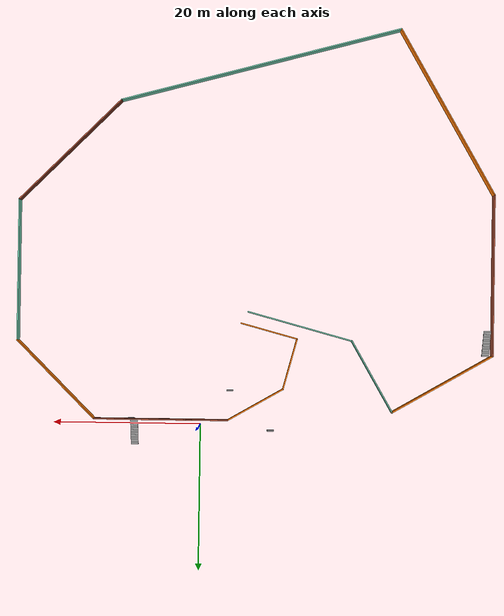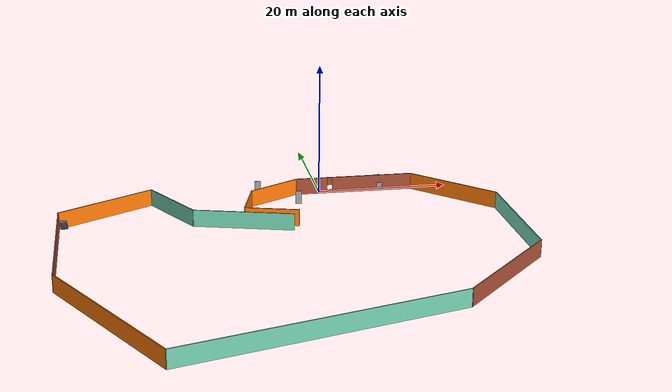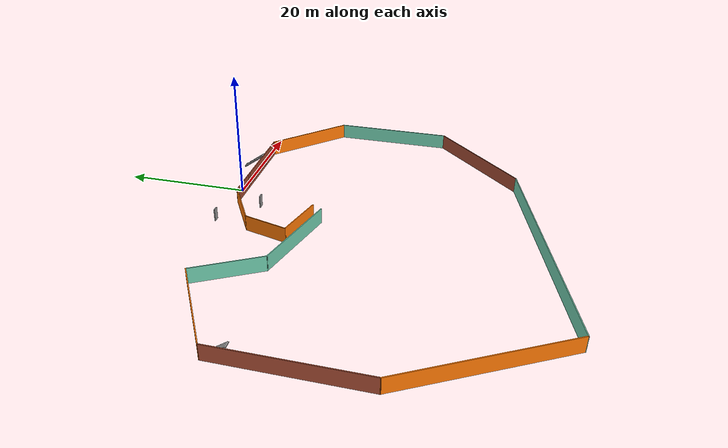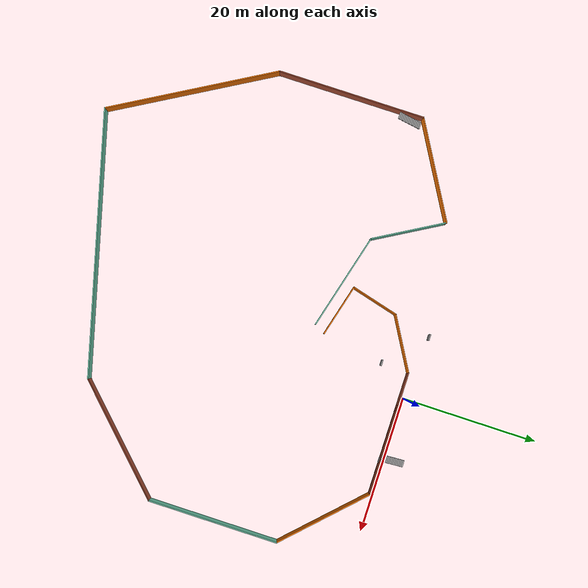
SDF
<?xml version='1.0'?>
<sdf version='1.7'>
  <model name='myworld'>
    <pose>-7.28526 -25.6055 0 0 -0 0</pose>
    <link name='Door_0'>
      <collision name='Door_0_Collision'>
        <geometry>
          <box>
            <size>0.9 0.17 2</size>
          </box>
        </geometry>
        <pose>0 0 1 0 -0 0</pose>
      </collision>
      <visual name='Door_0_Visual'>
        <pose>0 0 1 0 -0 0</pose>
        <geometry>
          <box>
            <size>0.9 0.17 2</size>
          </box>
        </geometry>
        <material>
          <script>
            <uri>file://media/materials/scripts/gazebo.material</uri>
            <name>Gazebo/Grey</name>
          </script>
        </material>
      </visual>
      <pose>-2.23862 26.3646 0 0 -0 0</pose>
    </link>
    <link name='Door_1'>
      <collision name='Door_1_Collision'>
        <geometry>
          <box>
            <size>0.9 0.17 2</size>
          </box>
        </geometry>
        <pose>0 0 1 0 -0 0</pose>
      </collision>
      <visual name='Door_1_Visual'>
        <pose>0 0 1 0 -0 0</pose>
        <geometry>
          <box>
            <size>0.9 0.17 2</size>
          </box>
        </geometry>
        <material>
          <script>
            <uri>file://media/materials/scripts/gazebo.material</uri>
            <name>Gazebo/Grey</name>
          </script>
        </material>
      </visual>
      <pose>3.32816 20.9649 0 0 -0 0</pose>
    </link>
    <link name='Stairs_0'>
      <visual name='Stairs_0_Visual_0'>
        <pose>16.2075 28.3932 0.083333 0 -0 0</pose>
        <geometry>
          <box>
            <size>1 0.233333 0.166667</size>
          </box>
        </geometry>
        <material>
          <script>
            <uri>file://media/materials/scripts/gazebo.material</uri>
            <name>Gazebo/Grey</name>
          </script>
          <ambient>1 1 1 1</ambient>
        </material>
        <meta>
          <layer>0</layer>
        </meta>
      </visual>
      <collision name='Stairs_0_Collision_0'>
        <geometry>
          <box>
            <size>1 0.233333 0.166667</size>
          </box>
        </geometry>
        <pose>16.2075 28.3932 0.083333 0 -0 0</pose>
      </collision>
      <visual name='Stairs_0_Visual_1'>
        <pose>16.2075 28.1598 0.25 0 -0 0</pose>
        <geometry>
          <box>
            <size>1 0.233333 0.166667</size>
          </box>
        </geometry>
        <material>
          <script>
            <uri>file://media/materials/scripts/gazebo.material</uri>
            <name>Gazebo/Grey</name>
          </script>
          <ambient>1 1 1 1</ambient>
        </material>
        <meta>
          <layer>0</layer>
        </meta>
      </visual>
      <collision name='Stairs_0_Collision_1'>
        <geometry>
          <box>
            <size>1 0.233333 0.166667</size>
          </box>
        </geometry>
        <pose>16.2075 28.1598 0.25 0 -0 0</pose>
      </collision>
      <visual name='Stairs_0_Visual_2'>
        <pose>16.2075 27.9265 0.416667 0 -0 0</pose>
        <geometry>
          <box>
            <size>1 0.233333 0.166667</size>
          </box>
        </geometry>
        <material>
          <script>
            <uri>file://media/materials/scripts/gazebo.material</uri>
            <name>Gazebo/Grey</name>
          </script>
          <ambient>1 1 1 1</ambient>
        </material>
        <meta>
          <layer>0</layer>
        </meta>
      </visual>
      <collision name='Stairs_0_Collision_2'>
        <geometry>
          <box>
            <size>1 0.233333 0.166667</size>
          </box>
        </geometry>
        <pose>16.2075 27.9265 0.416667 0 -0 0</pose>
      </collision>
      <visual name='Stairs_0_Visual_3'>
        <pose>16.2075 27.6932 0.583333 0 -0 0</pose>
        <geometry>
          <box>
            <size>1 0.233333 0.166667</size>
          </box>
        </geometry>
        <material>
          <script>
            <uri>file://media/materials/scripts/gazebo.material</uri>
            <name>Gazebo/Grey</name>
          </script>
          <ambient>1 1 1 1</ambient>
        </material>
        <meta>
          <layer>0</layer>
        </meta>
      </visual>
      <collision name='Stairs_0_Collision_3'>
        <geometry>
          <box>
            <size>1 0.233333 0.166667</size>
          </box>
        </geometry>
        <pose>16.2075 27.6932 0.583333 0 -0 0</pose>
      </collision>
      <visual name='Stairs_0_Visual_4'>
        <pose>16.2075 27.4598 0.75 0 -0 0</pose>
        <geometry>
          <box>
            <size>1 0.233333 0.166667</size>
          </box>
        </geometry>
        <material>
          <script>
            <uri>file://media/materials/scripts/gazebo.material</uri>
            <name>Gazebo/Grey</name>
          </script>
          <ambient>1 1 1 1</ambient>
        </material>
        <meta>
          <layer>0</layer>
        </meta>
      </visual>
      <collision name='Stairs_0_Collision_4'>
        <geometry>
          <box>
            <size>1 0.233333 0.166667</size>
          </box>
        </geometry>
        <pose>16.2075 27.4598 0.75 0 -0 0</pose>
      </collision>
      <visual name='Stairs_0_Visual_5'>
        <pose>16.2075 27.2265 0.916667 0 -0 0</pose>
        <geometry>
          <box>
            <size>1 0.233333 0.166667</size>
          </box>
        </geometry>
        <material>
          <script>
            <uri>file://media/materials/scripts/gazebo.material</uri>
            <name>Gazebo/Grey</name>
          </script>
          <ambient>1 1 1 1</ambient>
        </material>
        <meta>
          <layer>0</layer>
        </meta>
      </visual>
      <collision name='Stairs_0_Collision_5'>
        <geometry>
          <box>
            <size>1 0.233333 0.166667</size>
          </box>
        </geometry>
        <pose>16.2075 27.2265 0.916667 0 -0 0</pose>
      </collision>
      <visual name='Stairs_0_Visual_6'>
        <pose>16.2075 26.9932 1.08333 0 -0 0</pose>
        <geometry>
          <box>
            <size>1 0.233333 0.166667</size>
          </box>
        </geometry>
        <material>
          <script>
            <uri>file://media/materials/scripts/gazebo.material</uri>
            <name>Gazebo/Grey</name>
          </script>
          <ambient>1 1 1 1</ambient>
        </material>
        <meta>
          <layer>0</layer>
        </meta>
      </visual>
      <collision name='Stairs_0_Collision_6'>
        <geometry>
          <box>
            <size>1 0.233333 0.166667</size>
          </box>
        </geometry>
        <pose>16.2075 26.9932 1.08333 0 -0 0</pose>
      </collision>
      <visual name='Stairs_0_Visual_7'>
        <pose>16.2075 26.7598 1.25 0 -0 0</pose>
        <geometry>
          <box>
            <size>1 0.233333 0.166667</size>
          </box>
        </geometry>
        <material>
          <script>
            <uri>file://media/materials/scripts/gazebo.material</uri>
            <name>Gazebo/Grey</name>
          </script>
          <ambient>1 1 1 1</ambient>
        </material>
        <meta>
          <layer>0</layer>
        </meta>
      </visual>
      <collision name='Stairs_0_Collision_7'>
        <geometry>
          <box>
            <size>1 0.233333 0.166667</size>
          </box>
        </geometry>
        <pose>16.2075 26.7598 1.25 0 -0 0</pose>
      </collision>
      <visual name='Stairs_0_Visual_8'>
        <pose>16.2075 26.5265 1.41667 0 -0 0</pose>
        <geometry>
          <box>
            <size>1 0.233333 0.166667</size>
          </box>
        </geometry>
        <material>
          <script>
            <uri>file://media/materials/scripts/gazebo.material</uri>
            <name>Gazebo/Grey</name>
          </script>
          <ambient>1 1 1 1</ambient>
        </material>
        <meta>
          <layer>0</layer>
        </meta>
      </visual>
      <collision name='Stairs_0_Collision_8'>
        <geometry>
          <box>
            <size>1 0.233333 0.166667</size>
          </box>
        </geometry>
        <pose>16.2075 26.5265 1.41667 0 -0 0</pose>
      </collision>
      <visual name='Stairs_0_Visual_9'>
        <pose>16.2075 26.2932 1.58333 0 -0 0</pose>
        <geometry>
          <box>
            <size>1 0.233333 0.166667</size>
          </box>
        </geometry>
        <material>
          <script>
            <uri>file://media/materials/scripts/gazebo.material</uri>
            <name>Gazebo/Grey</name>
          </script>
          <ambient>1 1 1 1</ambient>
        </material>
        <meta>
          <layer>0</layer>
        </meta>
      </visual>
      <collision name='Stairs_0_Collision_9'>
        <geometry>
          <box>
            <size>1 0.233333 0.166667</size>
          </box>
        </geometry>
        <pose>16.2075 26.2932 1.58333 0 -0 0</pose>
      </collision>
      <visual name='Stairs_0_Visual_10'>
        <pose>16.2075 26.0598 1.75 0 -0 0</pose>
        <geometry>
          <box>
            <size>1 0.233333 0.166667</size>
          </box>
        </geometry>
        <material>
          <script>
            <uri>file://media/materials/scripts/gazebo.material</uri>
            <name>Gazebo/Grey</name>
          </script>
          <ambient>1 1 1 1</ambient>
        </material>
        <meta>
          <layer>0</layer>
        </meta>
      </visual>
      <collision name='Stairs_0_Collision_10'>
        <geometry>
          <box>
            <size>1 0.233333 0.166667</size>
          </box>
        </geometry>
        <pose>16.2075 26.0598 1.75 0 -0 0</pose>
      </collision>
      <visual name='Stairs_0_Visual_11'>
        <pose>16.2075 25.8265 1.91667 0 -0 0</pose>
        <geometry>
          <box>
            <size>1 0.233333 0.166667</size>
          </box>
        </geometry>
        <material>
          <script>
            <uri>file://media/materials/scripts/gazebo.material</uri>
            <name>Gazebo/Grey</name>
          </script>
          <ambient>1 1 1 1</ambient>
        </material>
        <meta>
          <layer>0</layer>
        </meta>
      </visual>
      <collision name='Stairs_0_Collision_11'>
        <geometry>
          <box>
            <size>1 0.233333 0.166667</size>
          </box>
        </geometry>
        <pose>16.2075 25.8265 1.91667 0 -0 0</pose>
      </collision>
      <visual name='Stairs_0_Visual_12'>
        <pose>16.2075 25.5932 2.08333 0 -0 0</pose>
        <geometry>
          <box>
            <size>1 0.233333 0.166667</size>
          </box>
        </geometry>
        <material>
          <script>
            <uri>file://media/materials/scripts/gazebo.material</uri>
            <name>Gazebo/Grey</name>
          </script>
          <ambient>1 1 1 1</ambient>
        </material>
        <meta>
          <layer>0</layer>
        </meta>
      </visual>
      <collision name='Stairs_0_Collision_12'>
        <geometry>
          <box>
            <size>1 0.233333 0.166667</size>
          </box>
        </geometry>
        <pose>16.2075 25.5932 2.08333 0 -0 0</pose>
      </collision>
      <visual name='Stairs_0_Visual_13'>
        <pose>16.2075 25.3598 2.25 0 -0 0</pose>
        <geometry>
          <box>
            <size>1 0.233333 0.166667</size>
          </box>
        </geometry>
        <material>
          <script>
            <uri>file://media/materials/scripts/gazebo.material</uri>
            <name>Gazebo/Grey</name>
          </script>
          <ambient>1 1 1 1</ambient>
        </material>
        <meta>
          <layer>0</layer>
        </meta>
      </visual>
      <collision name='Stairs_0_Collision_13'>
        <geometry>
          <box>
            <size>1 0.233333 0.166667</size>
          </box>
        </geometry>
        <pose>16.2075 25.3598 2.25 0 -0 0</pose>
      </collision>
      <visual name='Stairs_0_Visual_14'>
        <pose>16.2075 25.1265 2.41667 0 -0 0</pose>
        <geometry>
          <box>
            <size>1 0.233333 0.166667</size>
          </box>
        </geometry>
        <material>
          <script>
            <uri>file://media/materials/scripts/gazebo.material</uri>
            <name>Gazebo/Grey</name>
          </script>
          <ambient>1 1 1 1</ambient>
        </material>
        <meta>
          <layer>0</layer>
        </meta>
      </visual>
      <collision name='Stairs_0_Collision_14'>
        <geometry>
          <box>
            <size>1 0.233333 0.166667</size>
          </box>
        </geometry>
        <pose>16.2075 25.1265 2.41667 0 -0 0</pose>
      </collision>
    </link>
    <link name='Stairs_1'>
      <visual name='Stairs_1_Visual_0'>
        <pose>-31.4101 15.7578 0.083333 0 -0 0</pose>
        <geometry>
          <box>
            <size>1 0.233333 0.166667</size>
          </box>
        </geometry>
        <material>
          <script>
            <uri>file://media/materials/scripts/gazebo.material</uri>
            <name>Gazebo/Grey</name>
          </script>
          <ambient>1 1 1 1</ambient>
        </material>
        <meta>
          <layer>0</layer>
        </meta>
      </visual>
      <collision name='Stairs_1_Collision_0'>
        <geometry>
          <box>
            <size>1 0.233333 0.166667</size>
          </box>
        </geometry>
        <pose>-31.4101 15.7578 0.083333 0 -0 0</pose>
      </collision>
      <visual name='Stairs_1_Visual_1'>
        <pose>-31.4101 15.5245 0.25 0 -0 0</pose>
        <geometry>
          <box>
            <size>1 0.233333 0.166667</size>
          </box>
        </geometry>
        <material>
          <script>
            <uri>file://media/materials/scripts/gazebo.material</uri>
            <name>Gazebo/Grey</name>
          </script>
          <ambient>1 1 1 1</ambient>
        </material>
        <meta>
          <layer>0</layer>
        </meta>
      </visual>
      <collision name='Stairs_1_Collision_1'>
        <geometry>
          <box>
            <size>1 0.233333 0.166667</size>
          </box>
        </geometry>
        <pose>-31.4101 15.5245 0.25 0 -0 0</pose>
      </collision>
      <visual name='Stairs_1_Visual_2'>
        <pose>-31.4101 15.2912 0.416667 0 -0 0</pose>
        <geometry>
          <box>
            <size>1 0.233333 0.166667</size>
          </box>
        </geometry>
        <material>
          <script>
            <uri>file://media/materials/scripts/gazebo.material</uri>
            <name>Gazebo/Grey</name>
          </script>
          <ambient>1 1 1 1</ambient>
        </material>
        <meta>
          <layer>0</layer>
        </meta>
      </visual>
      <collision name='Stairs_1_Collision_2'>
        <geometry>
          <box>
            <size>1 0.233333 0.166667</size>
          </box>
        </geometry>
        <pose>-31.4101 15.2912 0.416667 0 -0 0</pose>
      </collision>
      <visual name='Stairs_1_Visual_3'>
        <pose>-31.4101 15.0578 0.583333 0 -0 0</pose>
        <geometry>
          <box>
            <size>1 0.233333 0.166667</size>
          </box>
        </geometry>
        <material>
          <script>
            <uri>file://media/materials/scripts/gazebo.material</uri>
            <name>Gazebo/Grey</name>
          </script>
          <ambient>1 1 1 1</ambient>
        </material>
        <meta>
          <layer>0</layer>
        </meta>
      </visual>
      <collision name='Stairs_1_Collision_3'>
        <geometry>
          <box>
            <size>1 0.233333 0.166667</size>
          </box>
        </geometry>
        <pose>-31.4101 15.0578 0.583333 0 -0 0</pose>
      </collision>
      <visual name='Stairs_1_Visual_4'>
        <pose>-31.4101 14.8245 0.75 0 -0 0</pose>
        <geometry>
          <box>
            <size>1 0.233333 0.166667</size>
          </box>
        </geometry>
        <material>
          <script>
            <uri>file://media/materials/scripts/gazebo.material</uri>
            <name>Gazebo/Grey</name>
          </script>
          <ambient>1 1 1 1</ambient>
        </material>
        <meta>
          <layer>0</layer>
        </meta>
      </visual>
      <collision name='Stairs_1_Collision_4'>
        <geometry>
          <box>
            <size>1 0.233333 0.166667</size>
          </box>
        </geometry>
        <pose>-31.4101 14.8245 0.75 0 -0 0</pose>
      </collision>
      <visual name='Stairs_1_Visual_5'>
        <pose>-31.4101 14.5912 0.916667 0 -0 0</pose>
        <geometry>
          <box>
            <size>1 0.233333 0.166667</size>
          </box>
        </geometry>
        <material>
          <script>
            <uri>file://media/materials/scripts/gazebo.material</uri>
            <name>Gazebo/Grey</name>
          </script>
          <ambient>1 1 1 1</ambient>
        </material>
        <meta>
          <layer>0</layer>
        </meta>
      </visual>
      <collision name='Stairs_1_Collision_5'>
        <geometry>
          <box>
            <size>1 0.233333 0.166667</size>
          </box>
        </geometry>
        <pose>-31.4101 14.5912 0.916667 0 -0 0</pose>
      </collision>
      <visual name='Stairs_1_Visual_6'>
        <pose>-31.4101 14.3578 1.08333 0 -0 0</pose>
        <geometry>
          <box>
            <size>1 0.233333 0.166667</size>
          </box>
        </geometry>
        <material>
          <script>
            <uri>file://media/materials/scripts/gazebo.material</uri>
            <name>Gazebo/Grey</name>
          </script>
          <ambient>1 1 1 1</ambient>
        </material>
        <meta>
          <layer>0</layer>
        </meta>
      </visual>
      <collision name='Stairs_1_Collision_6'>
        <geometry>
          <box>
            <size>1 0.233333 0.166667</size>
          </box>
        </geometry>
        <pose>-31.4101 14.3578 1.08333 0 -0 0</pose>
      </collision>
      <visual name='Stairs_1_Visual_7'>
        <pose>-31.4101 14.1245 1.25 0 -0 0</pose>
        <geometry>
          <box>
            <size>1 0.233333 0.166667</size>
          </box>
        </geometry>
        <material>
          <script>
            <uri>file://media/materials/scripts/gazebo.material</uri>
            <name>Gazebo/Grey</name>
          </script>
          <ambient>1 1 1 1</ambient>
        </material>
        <meta>
          <layer>0</layer>
        </meta>
      </visual>
      <collision name='Stairs_1_Collision_7'>
        <geometry>
          <box>
            <size>1 0.233333 0.166667</size>
          </box>
        </geometry>
        <pose>-31.4101 14.1245 1.25 0 -0 0</pose>
      </collision>
      <visual name='Stairs_1_Visual_8'>
        <pose>-31.4101 13.8912 1.41667 0 -0 0</pose>
        <geometry>
          <box>
            <size>1 0.233333 0.166667</size>
          </box>
        </geometry>
        <material>
          <script>
            <uri>file://media/materials/scripts/gazebo.material</uri>
            <name>Gazebo/Grey</name>
          </script>
          <ambient>1 1 1 1</ambient>
        </material>
        <meta>
          <layer>0</layer>
        </meta>
      </visual>
      <collision name='Stairs_1_Collision_8'>
        <geometry>
          <box>
            <size>1 0.233333 0.166667</size>
          </box>
        </geometry>
        <pose>-31.4101 13.8912 1.41667 0 -0 0</pose>
      </collision>
      <visual name='Stairs_1_Visual_9'>
        <pose>-31.4101 13.6578 1.58333 0 -0 0</pose>
        <geometry>
          <box>
            <size>1 0.233333 0.166667</size>
          </box>
        </geometry>
        <material>
          <script>
            <uri>file://media/materials/scripts/gazebo.material</uri>
            <name>Gazebo/Grey</name>
          </script>
          <ambient>1 1 1 1</ambient>
        </material>
        <meta>
          <layer>0</layer>
        </meta>
      </visual>
      <collision name='Stairs_1_Collision_9'>
        <geometry>
          <box>
            <size>1 0.233333 0.166667</size>
          </box>
        </geometry>
        <pose>-31.4101 13.6578 1.58333 0 -0 0</pose>
      </collision>
      <visual name='Stairs_1_Visual_10'>
        <pose>-31.4101 13.4245 1.75 0 -0 0</pose>
        <geometry>
          <box>
            <size>1 0.233333 0.166667</size>
          </box>
        </geometry>
        <material>
          <script>
            <uri>file://media/materials/scripts/gazebo.material</uri>
            <name>Gazebo/Grey</name>
          </script>
          <ambient>1 1 1 1</ambient>
        </material>
        <meta>
          <layer>0</layer>
        </meta>
      </visual>
      <collision name='Stairs_1_Collision_10'>
        <geometry>
          <box>
            <size>1 0.233333 0.166667</size>
          </box>
        </geometry>
        <pose>-31.4101 13.4245 1.75 0 -0 0</pose>
      </collision>
      <visual name='Stairs_1_Visual_11'>
        <pose>-31.4101 13.1912 1.91667 0 -0 0</pose>
        <geometry>
          <box>
            <size>1 0.233333 0.166667</size>
          </box>
        </geometry>
        <material>
          <script>
            <uri>file://media/materials/scripts/gazebo.material</uri>
            <name>Gazebo/Grey</name>
          </script>
          <ambient>1 1 1 1</ambient>
        </material>
        <meta>
          <layer>0</layer>
        </meta>
      </visual>
      <collision name='Stairs_1_Collision_11'>
        <geometry>
          <box>
            <size>1 0.233333 0.166667</size>
          </box>
        </geometry>
        <pose>-31.4101 13.1912 1.91667 0 -0 0</pose>
      </collision>
      <visual name='Stairs_1_Visual_12'>
        <pose>-31.4101 12.9578 2.08333 0 -0 0</pose>
        <geometry>
          <box>
            <size>1 0.233333 0.166667</size>
          </box>
        </geometry>
        <material>
          <script>
            <uri>file://media/materials/scripts/gazebo.material</uri>
            <name>Gazebo/Grey</name>
          </script>
          <ambient>1 1 1 1</ambient>
        </material>
        <meta>
          <layer>0</layer>
        </meta>
      </visual>
      <collision name='Stairs_1_Collision_12'>
        <geometry>
          <box>
            <size>1 0.233333 0.166667</size>
          </box>
        </geometry>
        <pose>-31.4101 12.9578 2.08333 0 -0 0</pose>
      </collision>
      <visual name='Stairs_1_Visual_13'>
        <pose>-31.4101 12.7245 2.25 0 -0 0</pose>
        <geometry>
          <box>
            <size>1 0.233333 0.166667</size>
          </box>
        </geometry>
        <material>
          <script>
            <uri>file://media/materials/scripts/gazebo.material</uri>
            <name>Gazebo/Grey</name>
          </script>
          <ambient>1 1 1 1</ambient>
        </material>
        <meta>
          <layer>0</layer>
        </meta>
      </visual>
      <collision name='Stairs_1_Collision_13'>
        <geometry>
          <box>
            <size>1 0.233333 0.166667</size>
          </box>
        </geometry>
        <pose>-31.4101 12.7245 2.25 0 -0 0</pose>
      </collision>
      <visual name='Stairs_1_Visual_14'>
        <pose>-31.4101 12.4912 2.41667 0 -0 0</pose>
        <geometry>
          <box>
            <size>1 0.233333 0.166667</size>
          </box>
        </geometry>
        <material>
          <script>
            <uri>file://media/materials/scripts/gazebo.material</uri>
            <name>Gazebo/Grey</name>
          </script>
          <ambient>1 1 1 1</ambient>
        </material>
        <meta>
          <layer>0</layer>
        </meta>
      </visual>
      <collision name='Stairs_1_Collision_14'>
        <geometry>
          <box>
            <size>1 0.233333 0.166667</size>
          </box>
        </geometry>
        <pose>-31.4101 12.4912 2.41667 0 -0 0</pose>
      </collision>
    </link>
    <link name='Wall_0'>
      <pose>12.6353 24.9955 0 0 -0 0</pose>
      <visual name='Wall_0_Visual_0'>
        <pose>-6.66805 0 1.25 0 -0 0</pose>
        <geometry>
          <box>
            <size>4.9139 0.15 2.5</size>
          </box>
        </geometry>
        <material>
          <script>
            <uri>file://media/materials/scripts/gazebo.material</uri>
            <name>Gazebo/Bricks</name>
          </script>
          <ambient>1 1 1 1</ambient>
        </material>
        <meta>
          <layer>0</layer>
        </meta>
      </visual>
      <collision name='Wall_0_Collision_0'>
        <geometry>
          <box>
            <size>4.9139 0.15 2.5</size>
          </box>
        </geometry>
        <pose>-6.66805 0 1.25 0 -0 0</pose>
      </collision>
      <visual name='Wall_0_Visual_1'>
        <pose>2.45695 0 0.25 0 -0 0</pose>
        <geometry>
          <box>
            <size>13.3361 0.15 0.5</size>
          </box>
        </geometry>
        <material>
          <script>
            <uri>file://media/materials/scripts/gazebo.material</uri>
            <name>Gazebo/Bricks</name>
          </script>
          <ambient>1 1 1 1</ambient>
        </material>
        <meta>
          <layer>0</layer>
        </meta>
      </visual>
      <collision name='Wall_0_Collision_1'>
        <geometry>
          <box>
            <size>13.3361 0.15 0.5</size>
          </box>
        </geometry>
        <pose>2.45695 0 0.25 0 -0 0</pose>
      </collision>
      <visual name='Wall_0_Visual_2'>
        <pose>2.85695 0 1.5 0 -0 0</pose>
        <geometry>
          <box>
            <size>12.5361 0.15 2</size>
          </box>
        </geometry>
        <material>
          <script>
            <uri>file://media/materials/scripts/gazebo.material</uri>
            <name>Gazebo/Bricks</name>
          </script>
          <ambient>1 1 1 1</ambient>
        </material>
        <meta>
          <layer>0</layer>
        </meta>
      </visual>
      <collision name='Wall_0_Collision_2'>
        <geometry>
          <box>
            <size>12.5361 0.15 2</size>
          </box>
        </geometry>
        <pose>2.85695 0 1.5 0 -0 0</pose>
      </collision>
      <visual name='Wall_0_Visual_3'>
        <pose>-3.8111 0 1.9 0 -0 0</pose>
        <geometry>
          <box>
            <size>0.8 0.15 1.2</size>
          </box>
        </geometry>
        <material>
          <script>
            <uri>file://media/materials/scripts/gazebo.material</uri>
            <name>Gazebo/Bricks</name>
          </script>
          <ambient>1 1 1 1</ambient>
        </material>
        <meta>
          <layer>0</layer>
        </meta>
      </visual>
      <collision name='Wall_0_Collision_3'>
        <geometry>
          <box>
            <size>0.8 0.15 1.2</size>
          </box>
        </geometry>
        <pose>-3.8111 0 1.9 0 -0 0</pose>
      </collision>
    </link>
    <link name='Wall_1'>
      <collision name='Wall_1_Collision'>
        <geometry>
          <box>
            <size>15 0.15 2.5</size>
          </box>
        </geometry>
        <pose>0 0 1.25 0 -0 0</pose>
      </collision>
      <visual name='Wall_1_Visual'>
        <pose>0 0 1.25 0 -0 0</pose>
        <geometry>
          <box>
            <size>15 0.15 2.5</size>
          </box>
        </geometry>
        <material>
          <script>
            <uri>file://media/materials/scripts/gazebo.material</uri>
            <name>Gazebo/Grey</name>
          </script>
          <ambient>0.996078 0.47451 0.0196078 1</ambient>
        </material>
        <meta>
          <layer>0</layer>
        </meta>
      </visual>
      <pose>26.9355 19.7452 0 0 -0 -0.785398</pose>
    </link>
    <link name='Wall_11'>
      <collision name='Wall_11_Collision'>
        <geometry>
          <box>
            <size>8.75 0.15 2.5</size>
          </box>
        </geometry>
        <pose>0 0 1.25 0 -0 0</pose>
      </collision>
      <visual name='Wall_11_Visual'>
        <pose>0 0 1.25 0 -0 0</pose>
        <geometry>
          <box>
            <size>8.75 0.15 2.5</size>
          </box>
        </geometry>
        <material>
          <script>
            <uri>file://media/materials/scripts/gazebo.material</uri>
            <name>Gazebo/Grey</name>
          </script>
          <ambient>0.996078 0.47451 0.0196078 1</ambient>
        </material>
        <meta>
          <layer>0</layer>
        </meta>
      </visual>
      <pose>-0.138645 22.8455 0 0 -0 -2.61799</pose>
    </link>
    <link name='Wall_12'>
      <collision name='Wall_12_Collision'>
        <geometry>
          <box>
            <size>7.25 0.15 2.5</size>
          </box>
        </geometry>
        <pose>0 0 1.25 0 -0 0</pose>
      </collision>
      <visual name='Wall_12_Visual'>
        <pose>0 0 1.25 0 -0 0</pose>
        <geometry>
          <box>
            <size>7.25 0.15 2.5</size>
          </box>
        </geometry>
        <material>
          <script>
            <uri>file://media/materials/scripts/gazebo.material</uri>
            <name>Gazebo/Grey</name>
          </script>
          <ambient>0.996078 0.47451 0.0196078 1</ambient>
        </material>
        <meta>
          <layer>0</layer>
        </meta>
      </visual>
      <pose>-4.78136 17.2665 0 0 -0 -1.8326</pose>
    </link>
    <link name='Wall_13'>
      <collision name='Wall_13_Collision'>
        <geometry>
          <box>
            <size>8 0.15 2.5</size>
          </box>
        </geometry>
        <pose>0 0 1.25 0 -0 0</pose>
      </collision>
      <visual name='Wall_13_Visual'>
        <pose>0 0 1.25 0 -0 0</pose>
        <geometry>
          <box>
            <size>8 0.15 2.5</size>
          </box>
        </geometry>
        <material>
          <script>
            <uri>file://media/materials/scripts/gazebo.material</uri>
            <name>Gazebo/Grey</name>
          </script>
          <ambient>0.996078 0.47451 0.0196078 1</ambient>
        </material>
        <meta>
          <layer>0</layer>
        </meta>
      </visual>
      <pose>-1.90891 12.8216 0 0 -0 -0.261799</pose>
    </link>
    <link name='Wall_2'>
      <collision name='Wall_2_Collision'>
        <geometry>
          <box>
            <size>19.25 0.15 2.5</size>
          </box>
        </geometry>
        <pose>0 0 1.25 0 -0 0</pose>
      </collision>
      <visual name='Wall_2_Visual'>
        <pose>0 0 1.25 0 -0 0</pose>
        <geometry>
          <box>
            <size>19.25 0.15 2.5</size>
          </box>
        </geometry>
        <material>
          <script>
            <uri>file://media/materials/scripts/gazebo.material</uri>
            <name>Gazebo/Grey</name>
          </script>
          <ambient>0.435294 0.796078 0.67451 1</ambient>
        </material>
        <meta>
          <layer>0</layer>
        </meta>
      </visual>
      <pose>32.1858 4.94496 0 0 -0 -1.5708</pose>
    </link>
    <link name='Wall_3'>
      <collision name='Wall_3_Collision'>
        <geometry>
          <box>
            <size>19.5 0.15 2.5</size>
          </box>
        </geometry>
        <pose>0 0 1.25 0 -0 0</pose>
      </collision>
      <visual name='Wall_3_Visual'>
        <pose>0 0 1.25 0 -0 0</pose>
        <geometry>
          <box>
            <size>19.5 0.15 2.5</size>
          </box>
        </geometry>
        <material>
          <script>
            <uri>file://media/materials/scripts/gazebo.material</uri>
            <name>Gazebo/Bricks</name>
          </script>
          <ambient>1 1 1 1</ambient>
        </material>
        <meta>
          <layer>0</layer>
        </meta>
      </visual>
      <pose>25.3445 -11.4463 0 0 -0 -2.35619</pose>
    </link>
    <link name='Wall_4'>
      <collision name='Wall_4_Collision'>
        <geometry>
          <box>
            <size>39.25 0.15 2.5</size>
          </box>
        </geometry>
        <pose>0 0 1.25 0 -0 0</pose>
      </collision>
      <visual name='Wall_4_Visual'>
        <pose>0 0 1.25 0 -0 0</pose>
        <geometry>
          <box>
            <size>39.25 0.15 2.5</size>
          </box>
        </geometry>
        <material>
          <script>
            <uri>file://media/materials/scripts/gazebo.material</uri>
            <name>Gazebo/Grey</name>
          </script>
          <ambient>0.435294 0.796078 0.67451 1</ambient>
        </material>
        <meta>
          <layer>0</layer>
        </meta>
      </visual>
      <pose>-0.380567 -23.3475 0 0 -0 -2.87979</pose>
    </link>
    <link name='Wall_5'>
      <collision name='Wall_5_Collision'>
        <geometry>
          <box>
            <size>26 0.15 2.5</size>
          </box>
        </geometry>
        <pose>0 0 1.25 0 -0 0</pose>
      </collision>
      <visual name='Wall_5_Visual'>
        <pose>0 0 1.25 0 -0 0</pose>
        <geometry>
          <box>
            <size>26 0.15 2.5</size>
          </box>
        </geometry>
        <material>
          <script>
            <uri>file://media/materials/scripts/gazebo.material</uri>
            <name>Gazebo/Grey</name>
          </script>
          <ambient>0.996078 0.47451 0.0196078 1</ambient>
        </material>
        <meta>
          <layer>0</layer>
        </meta>
      </visual>
      <pose>-25.7269 -17.214 0 0 -0 2.0944</pose>
    </link>
    <link name='Wall_6'>
      <collision name='Wall_6_Collision'>
        <geometry>
          <box>
            <size>22 0.15 2.5</size>
          </box>
        </geometry>
        <pose>0 0 1.25 0 -0 0</pose>
      </collision>
      <visual name='Wall_6_Visual'>
        <pose>0 0 1.25 0 -0 0</pose>
        <geometry>
          <box>
            <size>22 0.15 2.5</size>
          </box>
        </geometry>
        <material>
          <script>
            <uri>file://media/materials/scripts/gazebo.material</uri>
            <name>Gazebo/Bricks</name>
          </script>
          <ambient>1 1 1 1</ambient>
        </material>
        <meta>
          <layer>0</layer>
        </meta>
      </visual>
      <pose>-32.1894 4.90438 0 0 -0 1.5708</pose>
    </link>
    <link name='Wall_7'>
      <collision name='Wall_7_Collision'>
        <geometry>
          <box>
            <size>15.75 0.15 2.5</size>
          </box>
        </geometry>
        <pose>0 0 1.25 0 -0 0</pose>
      </collision>
      <visual name='Wall_7_Visual'>
        <pose>0 0 1.25 0 -0 0</pose>
        <geometry>
          <box>
            <size>15.75 0.15 2.5</size>
          </box>
        </geometry>
        <material>
          <script>
            <uri>file://media/materials/scripts/gazebo.material</uri>
            <name>Gazebo/Grey</name>
          </script>
          <ambient>0.996078 0.47451 0.0196078 1</ambient>
        </material>
        <meta>
          <layer>0</layer>
        </meta>
      </visual>
      <pose>-25.4344 19.7294 0 0 -0 0.523599</pose>
    </link>
    <link name='Wall_8'>
      <collision name='Wall_8_Collision'>
        <geometry>
          <box>
            <size>11.25 0.15 2.5</size>
          </box>
        </geometry>
        <pose>0 0 1.25 0 -0 0</pose>
      </collision>
      <visual name='Wall_8_Visual'>
        <pose>0 0 1.25 0 -0 0</pose>
        <geometry>
          <box>
            <size>11.25 0.15 2.5</size>
          </box>
        </geometry>
        <material>
          <script>
            <uri>file://media/materials/scripts/gazebo.material</uri>
            <name>Gazebo/Grey</name>
          </script>
          <ambient>0.435294 0.796078 0.67451 1</ambient>
        </material>
        <meta>
          <layer>0</layer>
        </meta>
      </visual>
      <pose>-15.9044 18.8229 0 0 -0 -1.0472</pose>
    </link>
    <link name='Wall_9'>
      <collision name='Wall_9_Collision'>
        <geometry>
          <box>
            <size>14.75 0.15 2.5</size>
          </box>
        </geometry>
        <pose>0 0 1.25 0 -0 0</pose>
      </collision>
      <visual name='Wall_9_Visual'>
        <pose>0 0 1.25 0 -0 0</pose>
        <geometry>
          <box>
            <size>14.75 0.15 2.5</size>
          </box>
        </geometry>
        <material>
          <script>
            <uri>file://media/materials/scripts/gazebo.material</uri>
            <name>Gazebo/Grey</name>
          </script>
          <ambient>0.435294 0.796078 0.67451 1</ambient>
        </material>
        <meta>
          <layer>0</layer>
        </meta>
      </visual>
      <pose>-6.07816 12.1271 0 0 -0 -0.261799</pose>
    </link>
    <link name='Window_1'>
      <collision name='Window_1_Collision'>
        <geometry>
          <box>
            <size>0.8 0.17 0.8</size>
          </box>
        </geometry>
        <pose>0 0 0.4 0 -0 0</pose>
      </collision>
      <visual name='Window_1_Visual'>
        <pose>0 0 0.4 0 -0 0</pose>
        <geometry>
          <box>
            <size>0.8 0.17 0.8</size>
          </box>
        </geometry>
        <material>
          <script>
            <uri>file://media/materials/scripts/gazebo.material</uri>
            <name>Gazebo/Grey</name>
          </script>
        </material>
      </visual>
      <pose>16.6997 24.914 0.5 0 -0 0</pose>
    </link>
    <static>1</static>
  </model>
</sdf>
